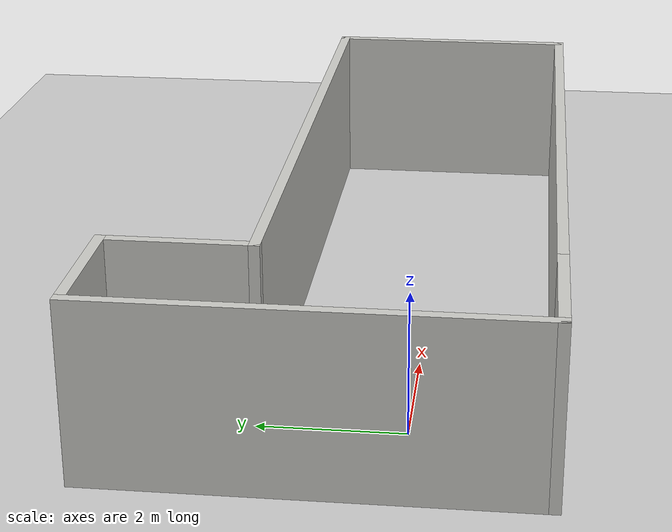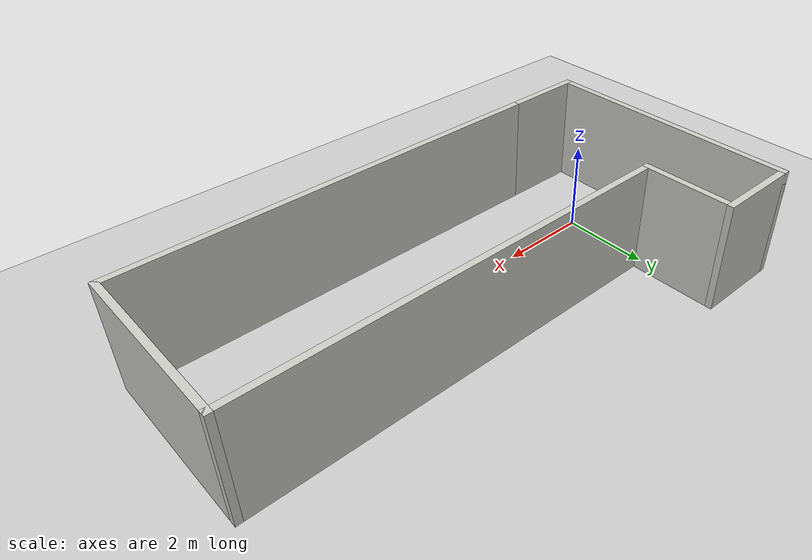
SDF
<sdf version="1.6">
 <world name="default">
  <light name="sun" type="directional">
   <pose>0 0 10 0 -0 0</pose>
   <diffuse>0.8 0.8 0.8 1</diffuse>
   <specular>0.1 0.1 0.1 1</specular>
   <attenuation>
    <range>1000</range>
    <constant>0.9</constant>
    <linear>0.01</linear>
    <quadratic>0.001</quadratic>
   </attenuation>
   <direction>-0.5 0.5 -1</direction>
  </light>
  <model name="ground_plane">
   <static>1</static>
   <link name="link">
    <collision name="collision">
     <geometry><plane><normal>0 0 1</normal><size>100 100</size></plane></geometry>
     <surface><friction><ode><mu>100</mu><mu2>50</mu2></ode></friction></surface>
    </collision>
    <visual name="visual">
     <cast_shadows>0</cast_shadows>
     <geometry><plane><normal>0 0 1</normal><size>100 100</size></plane></geometry>
     <material>
      <script><uri>file://media/materials/scripts/gazebo.material</uri><name>Gazebo/Grey</name></script>
     </material>
    </visual>
   </link>
  </model>
  <gravity>0 0 -9.8</gravity>
  <magnetic_field>6e-06 2.3e-05 -4.2e-05</magnetic_field>
  <atmosphere type="adiabatic"/>
  <physics name="default_physics" default="0" type="ode">
   <max_step_size>0.001</max_step_size>
   <real_time_factor>1</real_time_factor>
   <real_time_update_rate>1000</real_time_update_rate>
  </physics>
  <scene><ambient>0.4 0.4 0.4 1</ambient><background>0.7 0.7 0.7 1</background><shadows>1</shadows></scene>
  <spherical_coordinates>
   <surface_model>EARTH_WGS84</surface_model>
   <latitude_deg>0</latitude_deg>
   <longitude_deg>0</longitude_deg>
   <elevation>0</elevation>
   <heading_deg>0</heading_deg>
  </spherical_coordinates>
  <model name="Corridor_1">
   <pose>4.18513 1.05314 0 0 -0 0</pose>
   <link name="Wall_59">
    <collision name="Wall_59_Collision">
     <geometry><box><size>10 0.15 2.5</size></box></geometry>
     <pose>0 0 1.25 0 -0 0</pose>
    </collision>
    <visual name="Wall_59_Visual">
     <pose>0 0 1.25 0 -0 0</pose>
     <geometry><box><size>10 0.15 2.5</size></box></geometry>
     <material>
      <script><uri>file://media/materials/scripts/gazebo.material</uri><name>Gazebo/CeilingTiled</name></script>
      <ambient>0.419608 0.419608 0.419608 1</ambient>
     </material>
    </visual>
    <pose>0.925 -2.925 0 0 -0 0</pose>
   </link>
   <link name="Wall_60">
    <collision name="Wall_60_Collision">
     <geometry><box><size>4 0.15 2.5</size></box></geometry>
     <pose>0 0 1.25 0 -0 0</pose>
    </collision>
    <visual name="Wall_60_Visual">
     <pose>0 0 1.25 0 -0 0</pose>
     <geometry><box><size>4 0.15 2.5</size></box></geometry>
     <material>
      <script><uri>file://media/materials/scripts/gazebo.material</uri><name>Gazebo/CeilingTiled</name></script>
      <ambient>0.419608 0.419608 0.419608 1</ambient>
     </material>
    </visual>
    <pose>5.85 -1 0 0 -0 1.5708</pose>
   </link>
   <link name="Wall_61">
    <collision name="Wall_61_Collision">
     <geometry><box><size>10 0.15 2.5</size></box></geometry>
     <pose>0 0 1.25 0 -0 0</pose>
    </collision>
    <visual name="Wall_61_Visual">
     <pose>0 0 1.25 0 -0 0</pose>
     <geometry><box><size>10 0.15 2.5</size></box></geometry>
     <material>
      <script><uri>file://media/materials/scripts/gazebo.material</uri><name>Gazebo/CeilingTiled</name></script>
      <ambient>0.419608 0.419608 0.419608 1</ambient>
     </material>
    </visual>
    <pose>0.925 0.925 0 0 -0 3.14159</pose>
   </link>
   <link name="Wall_62">
    <collision name="Wall_62_Collision">
     <geometry><box><size>2 0.15 2.5</size></box></geometry>
     <pose>0 0 1.25 0 -0 0</pose>
    </collision>
    <visual name="Wall_62_Visual">
     <pose>0 0 1.25 0 -0 0</pose>
     <geometry><box><size>2 0.15 2.5</size></box></geometry>
     <material>
      <script><uri>file://media/materials/scripts/gazebo.material</uri><name>Gazebo/CeilingTiled</name></script>
      <ambient>0.419608 0.419608 0.419608 1</ambient>
     </material>
    </visual>
    <pose>-4 1.85 0 0 -0 1.5708</pose>
   </link>
   <link name="Wall_64">
    <collision name="Wall_64_Collision">
     <geometry><box><size>2 0.15 2.5</size></box></geometry>
     <pose>0 0 1.25 0 -0 0</pose>
    </collision>
    <visual name="Wall_64_Visual">
     <pose>0 0 1.25 0 -0 0</pose>
     <geometry><box><size>2 0.15 2.5</size></box></geometry>
     <material>
      <script><uri>file://media/materials/scripts/gazebo.material</uri><name>Gazebo/CeilingTiled</name></script>
      <ambient>0.419608 0.419608 0.419608 1</ambient>
     </material>
    </visual>
    <pose>-4.925 -2.925 0 0 -0 3.14159</pose>
   </link>
   <link name="Wall_65">
    <collision name="Wall_65_Collision">
     <geometry><box><size>6 0.15 2.5</size></box></geometry>
     <pose>0 0 1.25 0 -0 0</pose>
    </collision>
    <visual name="Wall_65_Visual">
     <pose>0 0 1.25 0 -0 0</pose>
     <geometry><box><size>6 0.15 2.5</size></box></geometry>
     <material>
      <script><uri>file://media/materials/scripts/gazebo.material</uri><name>Gazebo/CeilingTiled</name></script>
      <ambient>0.419608 0.419608 0.419608 1</ambient>
     </material>
    </visual>
    <pose>-5.85 0 0 0 -0 1.5708</pose>
   </link>
   <link name="Wall_66">
    <collision name="Wall_66_Collision">
     <geometry><box><size>2 0.15 2.5</size></box></geometry>
     <pose>0 0 1.25 0 -0 0</pose>
    </collision>
    <visual name="Wall_66_Visual">
     <pose>0 0 1.25 0 -0 0</pose>
     <geometry><box><size>2 0.15 2.5</size></box></geometry>
     <material>
      <script><uri>file://media/materials/scripts/gazebo.material</uri><name>Gazebo/CeilingTiled</name></script>
      <ambient>0.419608 0.419608 0.419608 1</ambient>
     </material>
    </visual>
    <pose>-4.925 2.925 0 0 -0 0</pose>
   </link>
   <static>1</static>
  </model>
 </world>
</sdf>
